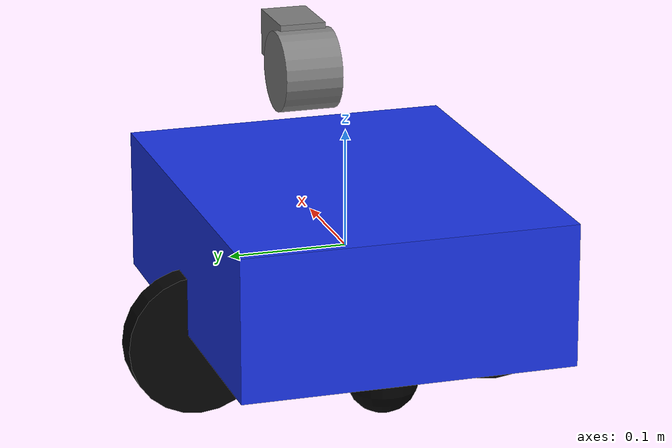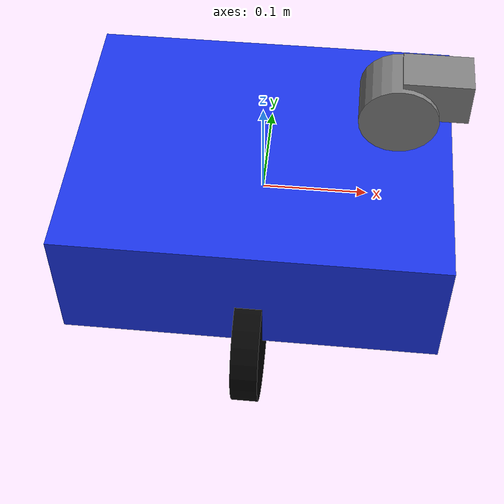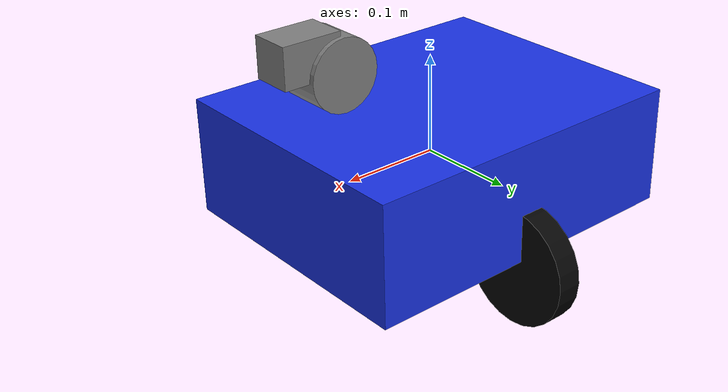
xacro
<?xml version="1.0"?>
<robot xmlns:xacro="http://www.ros.org/wiki/xacro" name="my_robot">
  <xacro:property name="chassis_length" value="0.35"/>
  <xacro:property name="chassis_width" value="0.28"/>
  <xacro:property name="chassis_height" value="0.12"/>
  <xacro:property name="wheel_radius" value="0.06"/>
  <xacro:property name="wheel_width" value="0.025"/>
  <xacro:property name="wheel_sep" value="0.26"/>

  <link name="base_link">
    <visual>
      <geometry>
        <box size="${chassis_length} ${chassis_width} ${chassis_height}"/>
      </geometry>
      <material name="blue">
        <color rgba="0.1 0.2 0.9 1.0"/>
      </material>
    </visual>
    <collision>
      <geometry>
        <box size="${chassis_length} ${chassis_width} ${chassis_height}"/>
      </geometry>
    </collision>
    <inertial>
      <mass value="12.0"/>
      <origin xyz="0 0 0" rpy="0 0 0"/>
      <inertia ixx="0.2" ixy="0.0" ixz="0.0"
               iyy="0.6" iyz="0.0"
               izz="0.7"/>
    </inertial>
  </link>

  <link name="caster_wheel">
    <collision>
      <geometry>
        <sphere radius="0.03"/>
      </geometry>
    </collision>
    <visual>
      <geometry>
        <sphere radius="0.03"/>
      </geometry>
      <material name="black">
        <color rgba="0.02 0.02 0.02 1.0"/>
      </material>
    </visual>
    <inertial>
      <mass value="0.5"/>
      <origin xyz="0 0 0" rpy="0 0 0"/>
      <inertia ixx="0.0001" ixy="0.0" ixz="0.0"
               iyy="0.0001" iyz="0.0"
               izz="0.0001"/>
    </inertial>
  </link>

  <joint name="caster_joint" type="continuous">
    <parent link="base_link"/>
    <child link="caster_wheel"/>
    <origin xyz="-0.1 0 -0.08" rpy="0 0 0"/>
    <axis xyz="0 0 1"/>
  </joint>

  <link name="left_wheel_link">
    <visual>
      <geometry>
        <cylinder length="${wheel_width}" radius="${wheel_radius}"/>
      </geometry>
      <origin xyz="0 0 0" rpy="0 1.5707 0"/>
      <material name="black"/>
    </visual>
    <collision>
      <geometry>
        <cylinder length="${wheel_width}" radius="${wheel_radius}"/>
      </geometry>
      <origin xyz="0 0 0" rpy="0 1.5707 0"/>
    </collision>
    <inertial>
      <mass value="2.0"/>
      <origin xyz="0 0 0" rpy="0 0 0"/>
      <inertia ixx="0.02" ixy="0.0" ixz="0.0"
               iyy="0.02" iyz="0.0"
               izz="0.01"/>
    </inertial>
  </link>

  <joint name="left_wheel_joint" type="continuous">
    <parent link="base_link"/>
    <child link="left_wheel_link"/>
    <origin xyz="0 ${wheel_sep / 2.0} -${(chassis_height / 2.0) + 0.01}" rpy="0 0 0"/>
    <axis xyz="0 1 0"/>
  </joint>

  <link name="right_wheel_link">
    <visual>
      <geometry>
        <cylinder length="${wheel_width}" radius="${wheel_radius}"/>
      </geometry>
      <origin xyz="0 0 0" rpy="0 1.5707 0"/>
      <material name="black"/>
    </visual>
    <collision>
      <geometry>
        <cylinder length="${wheel_width}" radius="${wheel_radius}"/>
      </geometry>
      <origin xyz="0 0 0" rpy="0 1.5707 0"/>
    </collision>
    <inertial>
      <mass value="2.0"/>
      <origin xyz="0 0 0" rpy="0 0 0"/>
      <inertia ixx="0.02" ixy="0.0" ixz="0.0"
               iyy="0.02" iyz="0.0"
               izz="0.01"/>
    </inertial>
  </link>

  <joint name="right_wheel_joint" type="continuous">
    <parent link="base_link"/>
    <child link="right_wheel_link"/>
    <origin xyz="0 -${wheel_sep / 2.0} -${(chassis_height / 2.0) + 0.01}" rpy="0 0 0"/>
    <axis xyz="0 1 0"/>
  </joint>

  <link name="lidar_link">
    <visual>
      <geometry>
        <cylinder length="0.05" radius="0.035"/>
      </geometry>
      <origin xyz="0 0 0" rpy="1.5707 0 0"/>
      <material name="gray">
        <color rgba="0.5 0.5 0.5 1.0"/>
      </material>
    </visual>
    <collision>
      <geometry>
        <cylinder length="0.05" radius="0.035"/>
      </geometry>
      <origin xyz="0 0 0" rpy="1.5707 0 0"/>
    </collision>
    <inertial>
      <mass value="0.5"/>
      <origin xyz="0 0 0" rpy="0 0 0"/>
      <inertia ixx="0.0005" ixy="0.0" ixz="0.0"
               iyy="0.0005" iyz="0.0"
               izz="0.0005"/>
    </inertial>
  </link>

  <joint name="lidar_joint" type="fixed">
    <parent link="base_link"/>
    <child link="lidar_link"/>
    <origin xyz="0.12 0 ${chassis_height / 2.0 + 0.06}" rpy="0 0 0"/>
  </joint>

  <link name="camera_link">
    <visual>
      <geometry>
        <box size="0.06 0.04 0.04"/>
      </geometry>
      <material name="gray"/>
    </visual>
    <collision>
      <geometry>
        <box size="0.06 0.04 0.04"/>
      </geometry>
    </collision>
    <inertial>
      <mass value="0.6"/>
      <origin xyz="0 0 0" rpy="0 0 0"/>
      <inertia ixx="0.0008" ixy="0.0" ixz="0.0"
               iyy="0.0008" iyz="0.0"
               izz="0.0005"/>
    </inertial>
  </link>

  <joint name="camera_joint" type="fixed">
    <parent link="base_link"/>
    <child link="camera_link"/>
    <origin xyz="0.15 0 ${chassis_height / 2.0 + 0.08}" rpy="0 0 0"/>
  </joint>

  <gazebo reference="base_link">
    <material>Gazebo/Blue</material>
  </gazebo>

  <gazebo>
    <plugin name="diff_drive" filename="ignition-gazebo-diff-drive-system">
      <left_joint>left_wheel_joint</left_joint>
      <right_joint>right_wheel_joint</right_joint>
      <wheel_separation>${wheel_sep}</wheel_separation>
      <wheel_radius>${wheel_radius}</wheel_radius>
      <odom_publish_frequency>50</odom_publish_frequency>
      <topic>cmd_vel</topic>
    </plugin>
  </gazebo>

  <gazebo reference="lidar_link">
    <sensor name="front_lidar" type="ray">
      <topic>scan</topic>
      <pose>0 0 0 0 0 0</pose>
      <visualize>false</visualize>
      <update_rate>15</update_rate>
      <ray>
        <scan>
          <horizontal>
            <samples>720</samples>
            <resolution>1</resolution>
            <min_angle>-1.57</min_angle>
            <max_angle>1.57</max_angle>
          </horizontal>
        </scan>
        <range>
          <min>0.12</min>
          <max>6.0</max>
          <resolution>0.01</resolution>
        </range>
      </ray>
    </sensor>
  </gazebo>

  <gazebo reference="camera_link">
    <sensor name="front_camera" type="camera">
      <topic>camera/image_raw</topic>
      <pose>0 0 0 0 0 0</pose>
      <update_rate>20</update_rate>
      <camera>
        <horizontal_fov>1.396</horizontal_fov>
        <image>
          <width>640</width>
          <height>480</height>
          <format>R8G8B8</format>
        </image>
        <clip>
          <near>0.05</near>
          <far>20.0</far>
        </clip>
      </camera>
    </sensor>
  </gazebo>
</robot>
